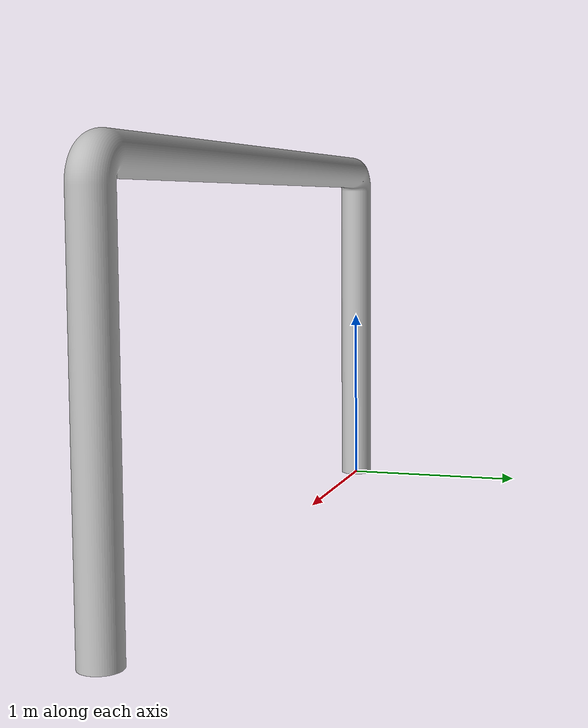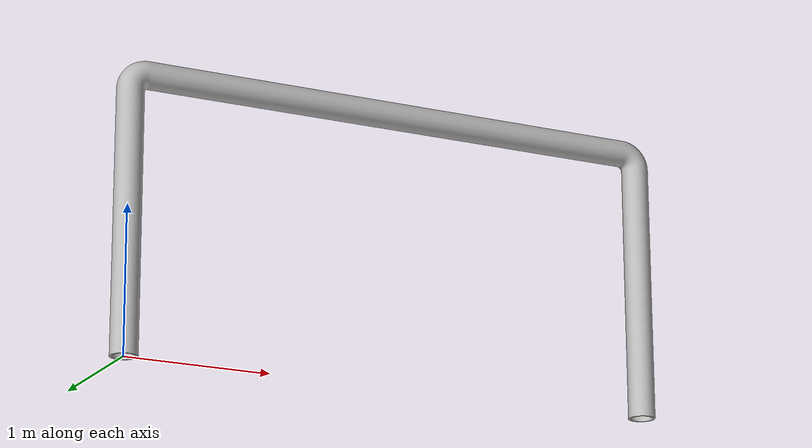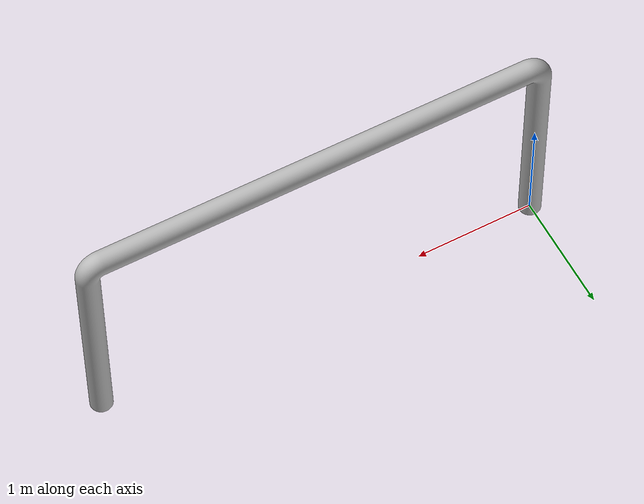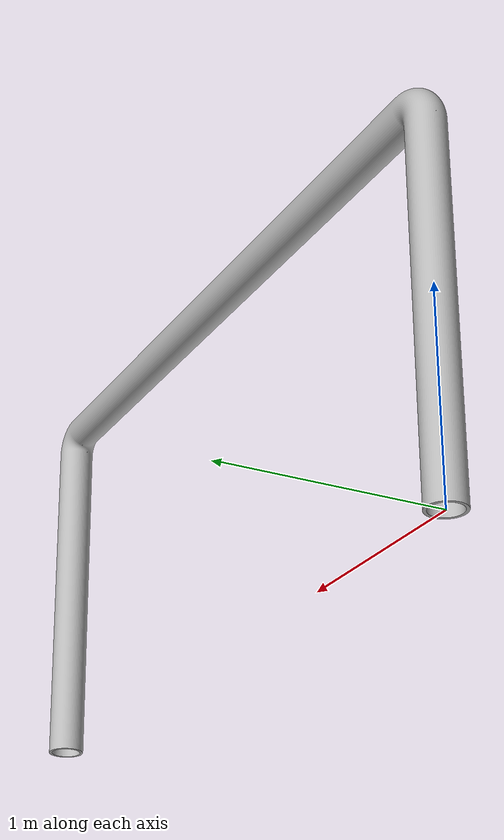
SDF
<?xml version="1.0"?>
<sdf version="1.6">
  <model name="pipe6">
    <link name="link">
      <collision name="collision">
        <geometry>
          <mesh>
            <uri>model://pipe6/meshes/pipe6.dae</uri>
          </mesh>
        </geometry>
      </collision>
      <visual name="visual">
        <geometry>
          <mesh>
            <uri>model://pipe6/meshes/pipe6.dae</uri>
          </mesh>
        </geometry>
      </visual>
    </link>
  </model>
</sdf>
